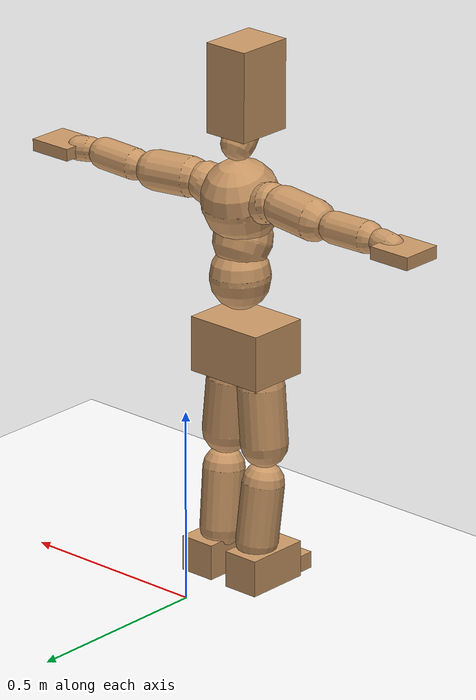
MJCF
<mujoco model="humanoid">
  <option integrator="implicitfast" />

  <visual>
    <global offwidth="1280" offheight="960" />
    <headlight active="1" ambient="0.34 0.34 0.34" diffuse="0.5 0.5 0.5" />
  </visual>

  <default>
    <joint damping="2" stiffness="2" armature="0.01" limited="true" solimplimit="0 .99 .01" />
    <geom condim="1" friction="0.7 0.005 0.0001" solimp=".99 .99 .003" solref="0.015 1" margin="0.001" rgba="0.8 0.6 .4 1" />
    <default class="smplcontact">
      <geom condim="3" friction="1. 0.005 0.0001" solref="0.015 1" solimp="0.98 0.98 0.001" priority="1" />
    </default>
    <default class="stiff_medium">
      <joint stiffness="10" />
    </default>
    <default class="stiff_medium_higher">
      <joint stiffness="50" />
    </default>
    <default class="stiff_high">
      <joint stiffness="100" />
    </default>
  </default>

  <asset>
    <texture type="skybox" builtin="gradient" rgb1="0.99 0.99 0.99" rgb2="0.608 0.828 0.892" width="100" />
    <texture builtin="flat" height="1278" mark="cross" markrgb="1 1 1" name="texgeom" random="0.01" rgb1="0.8 0.6 0.4" rgb2="0.8 0.6 0.4" type="cube" width="127" />
    <texture name="texplane" type="2d" builtin="checker" markrgb="1 1 1" rgb1="0.756 0.772 0.76" rgb2="0.6 0.6 0.6" width="100" height="100" />
    <material name="MatPlane" reflectance="0.5" texture="texplane" texrepeat="1 1" texuniform="true" />
    <material name="geom" texture="texgeom" texuniform="true" />
  </asset>

  <worldbody>
    <light name="tracking_light" pos="0 0 7" dir="0 0 -1" directional="true" cutoff="100" exponent="1" diffuse="1 1 1" specular="0.1 0.1 0.1" mode="trackcom" />
    <camera name="back" pos="0 3 2.4" xyaxes="-1 0 0 0 -1 2" mode="trackcom" />
    <camera name="side" pos="-3 0 2.4" xyaxes="0 -1 0 1 0 2" mode="trackcom" />
    <camera name="front_side" pos="-2.8 -2.8 0.8" xyaxes="0.5 -0.5 0 0.1 0.1 1" mode="trackcom" />
    <geom condim="3" name="floor" pos="0 0 0" rgba="1 1 1 1" size="100 100 .2" type="plane" material="MatPlane" />
    <body name="Pelvis" pos="-0.0018 -0.2233 0.625585" euler="90 0 0">
      <site name="Pelvis" size="0.01" />
      <freejoint name="Pelvis" />
      <geom type="box" pos="-0.0000 -0.0121 -0.0055" size="0.1069 0.0722 0.083" quat="1.0000 0.0000 0.0000 0.0000" density="3165.830099" name="Pelvis" />
      <body name="L_Hip" pos="0.045175 -0.05941 -0.00442">
        <joint name="L_Hip_x" type="hinge" pos="0 0 0" axis="1 0 0" stiffness="4.978594693877551" range="-160.0 22.92" class="stiff_medium" damping="6.22568299746539" armature="0.0034600686577585483"/>
        <joint name="L_Hip_y" type="hinge" pos="0 0 0" axis="0 1 0" stiffness="5.023897551020409" range="-70.0 70.0" class="stiff_medium" damping="5.491750724941625" armature="0.006003172978471898"/>
        <joint name="L_Hip_z" type="hinge" pos="0 0 0" axis="0 0 1" stiffness="5.020019081632654" range="-28.65 90.0" class="stiff_medium" damping="4.16524883266358" armature="0.0034560222891349703"/>
        <geom type="capsule" density="2040.816327" fromto="0.004485 -0.04875 -0.000585 0.01781 -0.19513 -0.00234" size="0.0615" name="L_Hip" />
        <body name="L_Knee" pos="0.022295 -0.24388 -0.002925">
          <joint name="L_Knee_x" type="hinge" pos="0 0 0" axis="1 0 0" range="-5.16 171.89" damping="3.558633532979093" armature="0.0037773959685041747" stiffness="1.0476688775510206"/>
          <joint name="L_Knee_y" type="hinge" pos="0 0 0" axis="0 1 0" range="-4.58 6.88" damping="4.609132499413812" armature="0.006525956703656113" stiffness="1.017288698129252"/>
          <joint name="L_Knee_z" type="hinge" pos="0 0 0" axis="0 0 1" range="-6.88 4.58" damping="3.571423228548828" armature="0.003755847998989064" stiffness="1.0612669795918368"/>
          <geom type="capsule" density="1234.567901" fromto="-0.001755 -0.05174 -0.005655 -0.007085 -0.20696 -0.02275" size="0.0541" name="L_Knee" />
          <body name="L_Ankle" pos="-0.00884 -0.2587 -0.028405">
            <joint name="L_Ankle_x" type="hinge" pos="0 0 0" axis="1 0 0" range="-45.84 45.84" class="stiff_medium" damping="3.809433260129821" armature="0.006201616138198001" stiffness="6.499999999999999"/>
            <joint name="L_Ankle_y" type="hinge" pos="0 0 0" axis="0 1 0" range="-74.48 22.92" class="stiff_medium" damping="1.9262945683357147" armature="0.006342924382905433" stiffness="6.499999999999999"/>
            <joint name="L_Ankle_z" type="hinge" pos="0 0 0" axis="0 0 1" range="-4.58 4.58" class="stiff_medium" damping="4.1239724237767295" armature="0.0072680122017397064" stiffness="6.499999999999999"/>
            <geom type="box" pos="0.015145 -0.015535 0.01573" size="0.0483 0.0464 0.085" quat="1.0000 0.0000 0.0000 0.0000" density="449.071558" name="L_Ankle" class="smplcontact" />
            <body name="L_Toe" pos="0.01716 -0.03627 0.077545">
              <joint name="L_Toe_x" type="hinge" pos="0 0 0" axis="1 0 0" range="-91.67 22.92" armature="0.007804414811504425" damping="1.4244816078107678" stiffness="1.2999999999999998"/>
              <joint name="L_Toe_y" type="hinge" pos="0 0 0" axis="0 1 0" range="-4.58 4.58" armature="0.008453032983853657" damping="1.482494039044323" stiffness="1.2999999999999998"/>
              <joint name="L_Toe_z" type="hinge" pos="0 0 0" axis="0 0 1" range="-4.58 4.58" armature="0.009764504016630505" damping="1.5933521407158968" stiffness="1.2999999999999998"/>
              <geom type="box" pos="-0.00195 0.003575 0.01612" size="0.0478 0.02 0.0496" quat="1.0000 0.0000 0.0000 0.0000" density="423.206892" name="L_Toe" class="smplcontact" />
            </body>
          </body>
        </body>
      </body>
      <body name="R_Hip" pos="-0.044005 -0.058825 -0.002795">
        <joint name="R_Hip_x" type="hinge" pos="0 0 0" axis="1 0 0" stiffness="4.978594693877551" range="-160.0 22.92" class="stiff_medium" damping="6.22568299746539" armature="0.0034600686577585483"/>
        <joint name="R_Hip_y" type="hinge" pos="0 0 0" axis="0 1 0" stiffness="5.023897551020409" range="-70.0 70.0" class="stiff_medium" damping="5.491750724941625" armature="0.006003172978471898"/>
        <joint name="R_Hip_z" type="hinge" pos="0 0 0" axis="0 0 1" stiffness="5.020019081632654" range="-90.0 28.65" class="stiff_medium" damping="4.16524883266358" armature="0.0034560222891349703"/>
        <geom type="capsule" density="2040.816327" fromto="-0.005005 -0.049725 -0.00117 -0.01989 -0.198965 -0.004615" size="0.0606" name="R_Hip" />
        <body name="R_Knee" pos="-0.024895 -0.24869 -0.005785">
          <joint name="R_Knee_x" type="hinge" pos="0 0 0" axis="1 0 0" range="-5.16 171.89" damping="3.558633532979093" armature="0.0037773959685041747" stiffness="1.0476688775510206"/>
          <joint name="R_Knee_y" type="hinge" pos="0 0 0" axis="0 1 0" range="-6.88 4.58" damping="4.609132499413812" armature="0.006525956703656113" stiffness="1.017288698129252"/>
          <joint name="R_Knee_z" type="hinge" pos="0 0 0" axis="0 0 1" range="-4.58 6.88" damping="3.571423228548828" armature="0.003755847998989064" stiffness="1.0612669795918368"/>
          <geom type="capsule" density="1234.567901" fromto="0.00208 -0.051805 -0.005525 0.00819 -0.207155 -0.02197" size="0.0541" name="R_Knee" />
          <body name="R_Ankle" pos="0.01027 -0.25896 -0.027495">
            <joint name="R_Ankle_x" type="hinge" pos="0 0 0" axis="1 0 0" range="-45.84 45.84" class="stiff_medium" damping="3.809433260129821" armature="0.006201616138198001" stiffness="6.499999999999999"/>
            <joint name="R_Ankle_y" type="hinge" pos="0 0 0" axis="0 1 0" range="-22.92 74.48" class="stiff_medium" damping="1.9262945683357147" armature="0.006342924382905433" stiffness="6.499999999999999"/>
            <joint name="R_Ankle_z" type="hinge" pos="0 0 0" axis="0 0 1" range="-4.58 4.58" class="stiff_medium" damping="4.1239724237767295" armature="0.0072680122017397064" stiffness="6.499999999999999"/>
            <geom type="box" pos="-0.01378 -0.01131 0.01664" size="0.0483 0.0478 0.0865" quat="1.0000 0.0000 0.0000 0.0000" density="434.700981" name="R_Ankle" class="smplcontact" />
            <body name="R_Toe" pos="-0.01651 -0.031265 0.080145">
              <joint name="R_Toe_x" type="hinge" pos="0 0 0" axis="1 0 0" range="-91.67 22.92" armature="0.007804414811504425" damping="1.4244816078107678" stiffness="1.2999999999999998"/>
              <joint name="R_Toe_y" type="hinge" pos="0 0 0" axis="0 1 0" range="-4.58 4.58" armature="0.008453032983853657" damping="1.482494039044323" stiffness="1.2999999999999998"/>
              <joint name="R_Toe_z" type="hinge" pos="0 0 0" axis="0 0 1" range="-4.58 4.58" armature="0.009764504016630505" damping="1.5933521407158968" stiffness="1.2999999999999998"/>
              <geom type="box" pos="0.00273 0.002925 0.014755" size="0.0479 0.0216 0.0493" quat="1.0000 0.0000 0.0000 0.0000" density="407.384095" name="R_Toe" class="smplcontact" />
            </body>
          </body>
        </body>
      </body>
      <body name="Torso" pos="-0.0025 0.109 -0.0267">
        <joint name="Torso_x" type="hinge" pos="0 0 0" axis="1 0 0" range="-25.78 57.3" class="stiff_medium" damping="13.37314814999913" armature="0.00877242981734661" stiffness="9.060765510204082"/>
        <joint name="Torso_y" type="hinge" pos="0 0 0" axis="0 1 0" range="-57.3 57.3" class="stiff_high" damping="12.226320346141847" armature="0.004068879652070055" stiffness="91.84525102040817"/>
        <joint name="Torso_z" type="hinge" pos="0 0 0" axis="0 0 1" range="-34.38 34.38" class="stiff_high" damping="16.35359938253326" armature="0.007159206954260778" stiffness="93.39030652173913"/>
        <geom type="capsule" density="2040.816327" fromto="0.0025 0.0608 0.0005 0.003 0.0743 0.0006" size="0.0769" name="Torso" />
        <body name="Spine" pos="0.0055 0.1352 0.0011">
          <joint name="Spine_x" type="hinge" pos="0 0 0" axis="1 0 0" stiffness="8.908842708333333" range="-25.78 57.3" class="stiff_medium" damping="13.158594891569368" armature="0.00863804026274914"/>
          <joint name="Spine_y" type="hinge" pos="0 0 0" axis="0 1 0" stiffness="8.972749166666667" range="-57.3 57.3" class="stiff_high" damping="4.80890026560341" armature="0.004027040886342621"/>
          <joint name="Spine_z" type="hinge" pos="0 0 0" axis="0 0 1" stiffness="17.517849130434783" range="-34.38 34.38" class="stiff_high" damping="8.751064227192273" armature="0.006071674266045487"/>
          <geom type="capsule" density="2040.816327" fromto="0.0007 0.0238 0.0114 0.0008 0.0291 0.014" size="0.0755" name="Spine" />
          <body name="Chest" pos="0.0015 0.0529 0.0254">
            <joint name="Chest_x" type="hinge" pos="0 0 0" axis="1 0 0" stiffness="8.515273695652173" range="-25.78 57.3" class="stiff_medium" damping="12.817953773118768" armature="0.008575437230772738"/>
            <joint name="Chest_y" type="hinge" pos="0 0 0" axis="0 1 0" stiffness="7.491567027027026" range="-57.3 57.3" class="stiff_high" damping="4.383244158841448" armature="0.0040071784395007744"/>
            <joint name="Chest_z" type="hinge" pos="0 0 0" axis="0 0 1" stiffness="17.575529777777778" range="-34.38 34.38" class="stiff_high" damping="8.418335716998895" armature="0.0056003034664410525"/>
            <geom type="capsule" density="2040.816327" fromto="-0.0009 0.0682 -0.0173 -0.001 0.0833 -0.0212" size="0.1002" name="Chest" />
            <body name="Neck" pos="-0.0028 0.2139 -0.0429">
              <joint name="Neck_x" type="hinge" pos="0 0 0" axis="1 0 0" range="-28.65 57.3" class="stiff_medium_higher" damping="10.000000000000014" armature="0.01000000000000003" stiffness="50.0"/>
              <joint name="Neck_y" type="hinge" pos="0 0 0" axis="0 1 0" range="-40.11 40.11" class="stiff_medium_higher" damping="10.0" armature="0.01" stiffness="50.0"/>
              <joint name="Neck_z" type="hinge" pos="0 0 0" axis="0 0 1" range="-40.11 40.11" class="stiff_medium_higher" damping="10.000000000000014" armature="0.010000000000000026" stiffness="50.0"/>
              <geom type="capsule" density="1000" fromto="0.001 0.013 0.0103 0.0041 0.052 0.0411" size="0.0436" name="Neck" />
              <body name="Head" pos="0.0052 0.065 0.0513">
                <joint name="Head_x" type="hinge" pos="0 0 0" axis="1 0 0" range="-28.65 57.3" class="stiff_medium_higher" damping="2.000000000000003" armature="0.010000000000000031" stiffness="50.0"/>
                <joint name="Head_y" type="hinge" pos="0 0 0" axis="0 1 0" range="-40.11 40.11" class="stiff_medium_higher" damping="2.0" armature="0.01" stiffness="50.0"/>
                <joint name="Head_z" type="hinge" pos="0 0 0" axis="0 0 1" range="-40.11 40.11" class="stiff_medium_higher" damping="2.0000000000000036" armature="0.010000000000000038" stiffness="50.0"/>
                <geom type="box" pos="-0.0042 0.0876 -0.0116" size="0.0606 0.1154 0.076" quat="1.0000 0.0000 0.0000 0.0000" density="1018.069894" name="Head" />
                <geom type="capsule" name="nose" size="0.02 0.01" pos="0 0.07 0.05" quat="1 0 0 0" mass="0" contype="0" conaffinity="0" />
              </body>
            </body>
            <body name="L_Thorax" pos="0.053584 0.082756 -0.023188">
              <joint name="L_Thorax_x" type="hinge" pos="0 0 0" axis="1 0 0" range="-10.89 4.58" class="stiff_medium_higher" damping="11.144256526121987" armature="0.005672388327247997" stiffness="27.368201530612247"/>
              <joint name="L_Thorax_y" type="hinge" pos="0 0 0" axis="0 1 0" range="-28.65 17.19" class="stiff_medium_higher" damping="9.115196575332536" armature="0.0038336850653574294" stiffness="27.0910387755102"/>
              <joint name="L_Thorax_z" type="hinge" pos="0 0 0" axis="0 0 1" range="-31.51 40.11" class="stiff_medium_higher" damping="9.113706518813446" armature="0.003831998274647257" stiffness="27.094103571428573"/>
              <geom type="capsule" density="1000" fromto="0.012376 0.004148 -0.001224 0.049504 0.016592 -0.004828" size="0.0521" name="L_Thorax" />
              <body name="L_Shoulder" pos="0.06188 0.02074 -0.006052">
                <joint name="L_Shoulder_x" type="hinge" pos="0 0 0" axis="1 0 0" range="-97.4 97.4" class="stiff_medium" damping="3.5490905639859007" armature="0.006345004028927573" stiffness="5.514418979591838"/>
                <joint name="L_Shoulder_y" type="hinge" pos="0 0 0" axis="0 1 0" range="-108.86 80.21" class="stiff_medium" damping="2.7567199214026434" armature="0.0038813055548228286" stiffness="5.438823367346939"/>
                <joint name="L_Shoulder_z" type="hinge" pos="0 0 0" axis="0 0 1" range="-97.4 85.94" class="stiff_medium" damping="2.7570102865462522" armature="0.003878943473659993" stiffness="5.443281836734695"/>
                <geom type="capsule" density="1000" fromto="0.035292 -0.001768 -0.00374 0.141236 -0.006936 -0.01496" size="0.0517" name="L_Shoulder" />
                <body name="L_Elbow" pos="0.176528 -0.008704 -0.0187">
                  <joint name="L_Elbow_x" type="hinge" pos="0 0 0" axis="1 0 0" range="-17.19 4.58" damping="3.265466516474599" armature="0.007519972541546954" stiffness="1.1343947346938776"/>
                  <joint name="L_Elbow_y" type="hinge" pos="0 0 0" axis="0 1 0" range="-180.0 17.19" damping="2.4156484254688855" armature="0.0041178361993632045" stiffness="1.1336744897959183"/>
                  <joint name="L_Elbow_z" type="hinge" pos="0 0 0" axis="0 0 1" range="-100.84 4.58" damping="2.4133114024327864" armature="0.0041054352469098625" stiffness="1.1348997755102042"/>
                  <geom type="capsule" density="1000" fromto="0.033864 0.001224 -0.000136 0.135592 0.004896 -0.000612" size="0.0405" name="L_Elbow" />
                  <body name="L_Wrist" pos="0.169456 0.00612 -0.000816">
                    <joint name="L_Wrist_x" type="hinge" pos="0 0 0" axis="1 0 0" range="-180.0 22.92" armature="0.008090873181896215" damping="1.4398674440733095" stiffness="1.2812079795918367"/>
                    <joint name="L_Wrist_y" type="hinge" pos="0 0 0" axis="0 1 0" range="-17.19 17.19" armature="0.0050899222663110325" damping="1.1368723710519675" stiffness="1.269644918367347"/>
                    <joint name="L_Wrist_z" type="hinge" pos="0 0 0" axis="0 0 1" range="-22.92 22.92" armature="0.004916742721869851" damping="1.1194149453885718" stiffness="1.274308918367347"/>
                    <geom type="capsule" density="1000" fromto="0.011424 -0.001088 -0.00204 0.045696 -0.00442 -0.00816" size="0.0318" name="L_Wrist" class="smplcontact" />
                    <body name="L_Hand" pos="0.05712 -0.005576 -0.010132">
                      <joint name="L_Hand_x" type="hinge" pos="0 0 0" axis="1 0 0" range="-17.19 17.19" armature="0.009765788321041262" damping="1.629814229697122" stiffness="1.36"/>
                      <joint name="L_Hand_y" type="hinge" pos="0 0 0" axis="0 1 0" range="-51.57 51.57" armature="0.007167532872723528" damping="1.396269652101914" stiffness="1.36"/>
                      <joint name="L_Hand_z" type="hinge" pos="0 0 0" axis="0 0 1" range="-91.67 91.67" armature="0.006474932382798964" damping="1.3270951767380206" stiffness="1.36"/>
                      <geom type="box" pos="0.033524 0.00068 -0.003944" size="0.0585 0.0158 0.0538" quat="1.0000 0.0000 0.0000 0.0000" density="400.552564" name="L_Hand" class="smplcontact" />
                    </body>
                  </body>
                </body>
              </body>
            </body>
            <body name="R_Thorax" pos="-0.055624 0.080784 -0.026248">
              <joint name="R_Thorax_x" type="hinge" pos="0 0 0" axis="1 0 0" range="-10.89 4.58" class="stiff_medium_higher" damping="11.144256526121987" armature="0.005672388327247997" stiffness="27.368201530612247"/>
              <joint name="R_Thorax_y" type="hinge" pos="0 0 0" axis="0 1 0" range="-17.19 28.65" class="stiff_medium_higher" damping="9.115196575332536" armature="0.0038336850653574294" stiffness="27.0910387755102"/>
              <joint name="R_Thorax_z" type="hinge" pos="0 0 0" axis="0 0 1" range="-40.11 31.51" class="stiff_medium_higher" damping="9.113706518813446" armature="0.003831998274647257" stiffness="27.094103571428573"/>
              <geom type="capsule" density="1000" fromto="-0.013056 0.00442 -0.001224 -0.052224 0.01768 -0.004964" size="0.0511" name="R_Thorax" />
              <body name="R_Shoulder" pos="-0.06528 0.022168 -0.006188">
                <joint name="R_Shoulder_x" type="hinge" pos="0 0 0" axis="1 0 0" range="-97.4 97.4" class="stiff_medium" damping="3.5490905639859007" armature="0.006345004028927573" stiffness="5.514418979591838"/>
                <joint name="R_Shoulder_y" type="hinge" pos="0 0 0" axis="0 1 0" range="-80.21 108.86" class="stiff_medium" damping="2.7567199214026434" armature="0.0038813055548228286" stiffness="5.438823367346939"/>
                <joint name="R_Shoulder_z" type="hinge" pos="0 0 0" axis="0 0 1" range="-85.94 97.4" class="stiff_medium" damping="2.7570102865462522" armature="0.003878943473659993" stiffness="5.443281836734695"/>
                <geom type="capsule" density="1000" fromto="-0.034476 -0.001836 -0.002924 -0.13804 -0.007276 -0.011628" size="0.0531" name="R_Shoulder" />
                <body name="R_Elbow" pos="-0.172516 -0.009044 -0.014552">
                  <joint name="R_Elbow_x" type="hinge" pos="0 0 0" axis="1 0 0" range="-17.19 4.58" damping="3.265466516474599" armature="0.007519972541546954" stiffness="1.1343947346938776"/>
                  <joint name="R_Elbow_y" type="hinge" pos="0 0 0" axis="0 1 0" range="-17.19 180.0" damping="2.4156484254688855" armature="0.0041178361993632045" stiffness="1.1336744897959183"/>
                  <joint name="R_Elbow_z" type="hinge" pos="0 0 0" axis="0 0 1" range="-4.58 100.84" damping="2.4133114024327864" armature="0.0041054352469098625" stiffness="1.1348997755102042"/>
                  <geom type="capsule" density="1000" fromto="-0.034748 0.001088 -0.000748 -0.138856 0.004216 -0.002992" size="0.0408" name="R_Elbow" />
                  <body name="R_Wrist" pos="-0.173604 0.005304 -0.003808">
                    <joint name="R_Wrist_x" type="hinge" pos="0 0 0" axis="1 0 0" range="-180.0 22.92" armature="0.008090873181896215" damping="1.4398674440733095" stiffness="1.2812079795918367"/>
                    <joint name="R_Wrist_y" type="hinge" pos="0 0 0" axis="0 1 0" range="-17.19 17.19" armature="0.0050899222663110325" damping="1.1368723710519675" stiffness="1.269644918367347"/>
                    <joint name="R_Wrist_z" type="hinge" pos="0 0 0" axis="0 0 1" range="-22.92 22.92" armature="0.004916742721869851" damping="1.1194149453885718" stiffness="1.274308918367347"/>
                    <geom type="capsule" density="1000" fromto="-0.011492 -0.000816 -0.001428 -0.046036 -0.003332 -0.005644" size="0.0326" name="R_Wrist" class="smplcontact" />
                    <body name="R_Hand" pos="-0.057528 -0.004148 -0.007004">
                      <joint name="R_Hand_x" type="hinge" pos="0 0 0" axis="1 0 0" range="-17.19 17.19" armature="0.009765788321041262" damping="1.629814229697122" stiffness="1.36"/>
                      <joint name="R_Hand_y" type="hinge" pos="0 0 0" axis="0 1 0" range="-51.57 51.57" armature="0.007167532872723528" damping="1.396269652101914" stiffness="1.36"/>
                      <joint name="R_Hand_z" type="hinge" pos="0 0 0" axis="0 0 1" range="-91.67 91.67" armature="0.006474932382798964" damping="1.3270951767380206" stiffness="1.36"/>
                      <geom type="box" pos="-0.031416 -0.000612 -0.005372" size="0.0569 0.0164 0.0546" quat="1.0000 0.0000 0.0000 0.0000" density="403.679611" name="R_Hand" class="smplcontact" />
                    </body>
                  </body>
                </body>
              </body>
            </body>
          </body>
        </body>
      </body>
    </body>
  </worldbody>
  <actuator>
    <general name="L_Hip_x" joint="L_Hip_x" biastype="affine" gainprm="143.04999325064261" biasprm="-107.20147099714679 -89.61470448979591 -0.8300910663287187" ctrllimited="true" ctrlrange="-1 1" forcerange="-179.22940897959182 179.22940897959182" />
    <general name="L_Hip_y" joint="L_Hip_y" biastype="affine" gainprm="110.48127747071428" biasprm="0.0 -90.43015591836736 -1.0983501449883248" ctrllimited="true" ctrlrange="-1 1" forcerange="-180.86031183673472 180.86031183673472" />
    <general name="L_Hip_z" joint="L_Hip_z" biastype="affine" gainprm="93.56059768935407" biasprm="48.37709792028547 -90.36034346938777 -0.833049766532716" ctrllimited="true" ctrlrange="-1 1" forcerange="-180.72068693877554 180.72068693877554" />
    <general name="L_Knee_x" joint="L_Knee_x" biastype="affine" gainprm="145.68332843368495" biasprm="137.19164840298384 -94.29019897959185 -0.8896583832447732" ctrllimited="true" ctrlrange="-1 1" forcerange="-188.5803979591837 188.5803979591837" />
    <general name="L_Knee_y" joint="L_Knee_y" biastype="affine" gainprm="9.156272697284273" biasprm="1.8376463528581 -91.55598283163268 -1.152283124853453" ctrllimited="true" ctrlrange="-1 1" forcerange="-183.11196566326535 183.11196566326535" />
    <general name="L_Knee_z" joint="L_Knee_z" biastype="affine" gainprm="9.552106385960705" biasprm="-1.9170894142853074 -95.51402816326531 -0.892855807137207" ctrllimited="true" ctrlrange="-1 1" forcerange="-191.02805632653062 191.02805632653062" />
    <general name="L_Ankle_x" joint="L_Ankle_x" biastype="affine" gainprm="46.80344735318074" biasprm="0.0 -58.49999999999999 -1.2698110867099404" ctrllimited="true" ctrlrange="-1 1" forcerange="-116.99999999999999 116.99999999999999" />
    <general name="L_Ankle_y" joint="L_Ankle_y" biastype="affine" gainprm="49.723557724692455" biasprm="-26.321834048102083 -58.49999999999999 -1.2841963788904764" ctrllimited="true" ctrlrange="-1 1" forcerange="-116.99999999999999 116.99999999999999" />
    <general name="L_Ankle_z" joint="L_Ankle_z" biastype="affine" gainprm="4.676260664868406" biasprm="0.0 -58.49999999999999 -1.374657474592243" ctrllimited="true" ctrlrange="-1 1" forcerange="-116.99999999999999 116.99999999999999" />
    <general name="L_Toe_x" joint="L_Toe_x" biastype="affine" gainprm="46.799363282731065" biasprm="-28.07798434145877 -46.8 -0.5697926431243071" ctrllimited="true" ctrlrange="-1 1" forcerange="-93.6 93.6" />
    <general name="L_Toe_y" joint="L_Toe_y" biastype="affine" gainprm="3.741008531894725" biasprm="0.0 -46.8 -0.5929976156177292" ctrllimited="true" ctrlrange="-1 1" forcerange="-93.6 93.6" />
    <general name="L_Toe_z" joint="L_Toe_z" biastype="affine" gainprm="3.741008531894725" biasprm="0.0 -46.8 -0.6373408562863587" ctrllimited="true" ctrlrange="-1 1" forcerange="-93.6 93.6" />
    <general name="R_Hip_x" joint="R_Hip_x" biastype="affine" gainprm="143.04999325064261" biasprm="-107.20147099714679 -89.61470448979591 -0.8300910663287187" ctrllimited="true" ctrlrange="-1 1" forcerange="-179.22940897959182 179.22940897959182" />
    <general name="R_Hip_y" joint="R_Hip_y" biastype="affine" gainprm="110.48127747071428" biasprm="0.0 -90.43015591836736 -1.0983501449883248" ctrllimited="true" ctrlrange="-1 1" forcerange="-180.86031183673472 180.86031183673472" />
    <general name="R_Hip_z" joint="R_Hip_z" biastype="affine" gainprm="93.56059768935407" biasprm="-48.37709792028547 -90.36034346938777 -0.833049766532716" ctrllimited="true" ctrlrange="-1 1" forcerange="-180.72068693877554 180.72068693877554" />
    <general name="R_Knee_x" joint="R_Knee_x" biastype="affine" gainprm="145.68332843368495" biasprm="137.19164840298384 -94.29019897959185 -0.8896583832447732" ctrllimited="true" ctrlrange="-1 1" forcerange="-188.5803979591837 188.5803979591837" />
    <general name="R_Knee_y" joint="R_Knee_y" biastype="affine" gainprm="9.156272697284273" biasprm="-1.8376463528581 -91.55598283163268 -1.152283124853453" ctrllimited="true" ctrlrange="-1 1" forcerange="-183.11196566326535 183.11196566326535" />
    <general name="R_Knee_z" joint="R_Knee_z" biastype="affine" gainprm="9.552106385960705" biasprm="1.9170894142853074 -95.51402816326531 -0.892855807137207" ctrllimited="true" ctrlrange="-1 1" forcerange="-191.02805632653062 191.02805632653062" />
    <general name="R_Ankle_x" joint="R_Ankle_x" biastype="affine" gainprm="46.80344735318074" biasprm="0.0 -58.49999999999999 -1.2698110867099404" ctrllimited="true" ctrlrange="-1 1" forcerange="-116.99999999999999 116.99999999999999" />
    <general name="R_Ankle_y" joint="R_Ankle_y" biastype="affine" gainprm="49.723557724692455" biasprm="26.321834048102083 -58.49999999999999 -1.2841963788904764" ctrllimited="true" ctrlrange="-1 1" forcerange="-116.99999999999999 116.99999999999999" />
    <general name="R_Ankle_z" joint="R_Ankle_z" biastype="affine" gainprm="4.676260664868406" biasprm="0.0 -58.49999999999999 -1.374657474592243" ctrllimited="true" ctrlrange="-1 1" forcerange="-116.99999999999999 116.99999999999999" />
    <general name="R_Toe_x" joint="R_Toe_x" biastype="affine" gainprm="46.799363282731065" biasprm="-28.07798434145877 -46.8 -0.5697926431243071" ctrllimited="true" ctrlrange="-1 1" forcerange="-93.6 93.6" />
    <general name="R_Toe_y" joint="R_Toe_y" biastype="affine" gainprm="3.741008531894725" biasprm="0.0 -46.8 -0.5929976156177292" ctrllimited="true" ctrlrange="-1 1" forcerange="-93.6 93.6" />
    <general name="R_Toe_z" joint="R_Toe_z" biastype="affine" gainprm="3.741008531894725" biasprm="0.0 -46.8 -0.6373408562863587" ctrllimited="true" ctrlrange="-1 1" forcerange="-93.6 93.6" />
    <general name="Torso_x" joint="Torso_x" biastype="affine" gainprm="157.65944472385632" biasprm="59.81494580760652 -217.45837224489796 -3.566172839999768" ctrllimited="true" ctrlrange="-1 1" forcerange="-326.1875583673469 326.1875583673469" />
    <general name="Torso_y" joint="Torso_y" biastype="affine" gainprm="220.4448395268381" biasprm="0.0 -220.4286024489796 -2.4452640692283696" ctrllimited="true" ctrlrange="-1 1" forcerange="-330.6429036734694 330.6429036734694" />
    <general name="Torso_z" joint="Torso_z" biastype="affine" gainprm="134.4919475257732" biasprm="0.0 -224.1367356521739 -3.270719876506652" ctrllimited="true" ctrlrange="-1 1" forcerange="-336.20510347826087 336.20510347826087" />
    <general name="Spine_x" joint="Spine_x" biastype="affine" gainprm="155.0159523437853" biasprm="58.81202236249533 -213.812225 -3.5089586377518316" ctrllimited="true" ctrlrange="-1 1" forcerange="-320.7183375 320.7183375" />
    <general name="Spine_y" joint="Spine_y" biastype="affine" gainprm="215.36184268481006" biasprm="0.0 -215.34597999999997 -2.404450132801705" ctrllimited="true" ctrlrange="-1 1" forcerange="-323.01896999999997 323.01896999999997" />
    <general name="Spine_z" joint="Spine_z" biastype="affine" gainprm="126.13780454111807" biasprm="0.0 -210.2141895652174 -2.917021409064091" ctrllimited="true" ctrlrange="-1 1" forcerange="-315.3212843478261 315.3212843478261" />
    <general name="Chest_x" joint="Chest_x" biastype="affine" gainprm="148.1677592269953" biasprm="56.21386339473869 -204.36656869565215 -3.4181210061650047" ctrllimited="true" ctrlrange="-1 1" forcerange="-306.5498530434782 306.5498530434782" />
    <general name="Chest_y" joint="Chest_y" biastype="affine" gainprm="179.81085279091494" biasprm="0.0 -179.79760864864863 -2.191622079420724" ctrllimited="true" ctrlrange="-1 1" forcerange="-269.69641297297295 269.69641297297295" />
    <general name="Chest_z" joint="Chest_z" biastype="affine" gainprm="126.55313579361271" biasprm="0.0 -210.90635733333332 -2.8061119056662984" ctrllimited="true" ctrlrange="-1 1" forcerange="-316.359536 316.359536" />
    <general name="Neck_x" joint="Neck_x" biastype="affine" gainprm="27.00198885760427" biasprm="9.000662952534757 -36.0 -0.8000000000000012" ctrllimited="true" ctrlrange="-1 1" forcerange="-72.0 72.0" />
    <general name="Neck_y" joint="Neck_y" biastype="affine" gainprm="25.20185626709732" biasprm="0.0 -36.0 -0.8" ctrllimited="true" ctrlrange="-1 1" forcerange="-72.0 72.0" />
    <general name="Neck_z" joint="Neck_z" biastype="affine" gainprm="25.20185626709732" biasprm="0.0 -36.0 -0.8000000000000012" ctrllimited="true" ctrlrange="-1 1" forcerange="-72.0 72.0" />
    <general name="Head_x" joint="Head_x" biastype="affine" gainprm="18.001325905069514" biasprm="6.000441968356505 -24.0 -0.8000000000000013" ctrllimited="true" ctrlrange="-1 1" forcerange="-48.0 48.0" />
    <general name="Head_y" joint="Head_y" biastype="affine" gainprm="16.801237511398213" biasprm="0.0 -24.0 -0.8" ctrllimited="true" ctrlrange="-1 1" forcerange="-48.0 48.0" />
    <general name="Head_z" joint="Head_z" biastype="affine" gainprm="16.801237511398213" biasprm="0.0 -24.0 -0.8000000000000015" ctrllimited="true" ctrlrange="-1 1" forcerange="-48.0 48.0" />
    <general name="L_Thorax_x" joint="L_Thorax_x" biastype="affine" gainprm="8.867377275114649" biasprm="-3.6168810992872307 -65.68368367346939 -0.891540522089759" ctrllimited="true" ctrlrange="-1 1" forcerange="-131.36736734693878 131.36736734693878" />
    <general name="L_Thorax_y" joint="L_Thorax_y" biastype="affine" gainprm="26.00931296559117" biasprm="-6.502328241397793 -65.01849306122449 -0.7292157260266029" ctrllimited="true" ctrlrange="-1 1" forcerange="-130.03698612244898 130.03698612244898" />
    <general name="L_Thorax_z" joint="L_Thorax_z" biastype="affine" gainprm="40.64131175335829" biasprm="4.880135172841123 -65.02584857142858 -0.7290965215050758" ctrllimited="true" ctrlrange="-1 1" forcerange="-130.05169714285717 130.05169714285717" />
    <general name="L_Shoulder_x" joint="L_Shoulder_x" biastype="affine" gainprm="44.99635371485119" biasprm="0.0 -26.46921110204082 -0.9464241503962403" ctrllimited="true" ctrlrange="-1 1" forcerange="-52.93842220408164 52.93842220408164" />
    <general name="L_Shoulder_y" joint="L_Shoulder_y" biastype="affine" gainprm="43.0740976513074" biasprm="-6.527068798381324 -26.106352163265306 -0.7351253123740382" ctrllimited="true" ctrlrange="-1 1" forcerange="-52.21270432653061 52.21270432653061" />
    <general name="L_Shoulder_z" joint="L_Shoulder_z" biastype="affine" gainprm="41.80292372365357" biasprm="-2.6129677422988493 -26.127752816326534 -0.7352027430790007" ctrllimited="true" ctrlrange="-1 1" forcerange="-52.25550563265307 52.25550563265307" />
    <general name="L_Elbow_x" joint="L_Elbow_x" biastype="affine" gainprm="7.758406020737442" biasprm="-4.493959573794174 -40.838210448979595 -0.5224746426359358" ctrllimited="true" ctrlrange="-1 1" forcerange="-81.67642089795919 81.67642089795919" />
    <general name="L_Elbow_y" joint="L_Elbow_y" biastype="affine" gainprm="70.23007526501416" biasprm="-57.98548888836633 -40.81228163265306 -0.3865037480750217" ctrllimited="true" ctrlrange="-1 1" forcerange="-81.62456326530612 81.62456326530612" />
    <general name="L_Elbow_z" joint="L_Elbow_z" biastype="affine" gainprm="37.586370869174154" biasprm="-34.3204710668441 -40.85639191836735 -0.38612982438924587" ctrllimited="true" ctrlrange="-1 1" forcerange="-81.7127838367347 81.7127838367347" />
    <general name="L_Wrist_x" joint="L_Wrist_x" biastype="affine" gainprm="13.612663555406227" biasprm="-10.537537903031787 -7.6872478775510205 -0.5759469776293238" ctrllimited="true" ctrlrange="-1 1" forcerange="-15.374495755102041 15.374495755102041" />
    <general name="L_Wrist_y" joint="L_Wrist_y" biastype="affine" gainprm="2.2855291959246" biasprm="0.0 -7.617869510204082 -0.454748948420787" ctrllimited="true" ctrlrange="-1 1" forcerange="-15.235739020408165 15.235739020408165" />
    <general name="L_Wrist_z" joint="L_Wrist_z" biastype="affine" gainprm="3.0585666857689655" biasprm="0.0 -7.645853510204082 -0.44776597815542873" ctrllimited="true" ctrlrange="-1 1" forcerange="-15.291707020408165 15.291707020408165" />
    <general name="L_Hand_x" joint="L_Hand_x" biastype="affine" gainprm="2.4481803230894545" biasprm="0.0 -8.16 -0.6519256918788489" ctrllimited="true" ctrlrange="-1 1" forcerange="-16.32 16.32" />
    <general name="L_Hand_y" joint="L_Hand_y" biastype="affine" gainprm="7.344540969268362" biasprm="0.0 -8.16 -0.5585078608407656" ctrllimited="true" ctrlrange="-1 1" forcerange="-16.32 16.32" />
    <general name="L_Hand_z" joint="L_Hand_z" biastype="affine" gainprm="13.055537534474128" biasprm="0.0 -8.16 -0.5308380706952083" ctrllimited="true" ctrlrange="-1 1" forcerange="-16.32 16.32" />
    <general name="R_Thorax_x" joint="R_Thorax_x" biastype="affine" gainprm="8.867377275114649" biasprm="-3.6168810992872307 -65.68368367346939 -0.891540522089759" ctrllimited="true" ctrlrange="-1 1" forcerange="-131.36736734693878 131.36736734693878" />
    <general name="R_Thorax_y" joint="R_Thorax_y" biastype="affine" gainprm="26.00931296559117" biasprm="6.502328241397789 -65.01849306122449 -0.7292157260266029" ctrllimited="true" ctrlrange="-1 1" forcerange="-130.03698612244898 130.03698612244898" />
    <general name="R_Thorax_z" joint="R_Thorax_z" biastype="affine" gainprm="40.64131175335829" biasprm="-4.880135172841123 -65.02584857142858 -0.7290965215050758" ctrllimited="true" ctrlrange="-1 1" forcerange="-130.05169714285717 130.05169714285717" />
    <general name="R_Shoulder_x" joint="R_Shoulder_x" biastype="affine" gainprm="44.99635371485119" biasprm="0.0 -26.46921110204082 -0.9464241503962403" ctrllimited="true" ctrlrange="-1 1" forcerange="-52.93842220408164 52.93842220408164" />
    <general name="R_Shoulder_y" joint="R_Shoulder_y" biastype="affine" gainprm="43.0740976513074" biasprm="6.527068798381324 -26.106352163265306 -0.7351253123740382" ctrllimited="true" ctrlrange="-1 1" forcerange="-52.21270432653061 52.21270432653061" />
    <general name="R_Shoulder_z" joint="R_Shoulder_z" biastype="affine" gainprm="41.80292372365357" biasprm="2.612967742298843 -26.127752816326534 -0.7352027430790007" ctrllimited="true" ctrlrange="-1 1" forcerange="-52.25550563265307 52.25550563265307" />
    <general name="R_Elbow_x" joint="R_Elbow_x" biastype="affine" gainprm="7.758406020737442" biasprm="-4.493959573794174 -40.838210448979595 -0.5224746426359358" ctrllimited="true" ctrlrange="-1 1" forcerange="-81.67642089795919 81.67642089795919" />
    <general name="R_Elbow_y" joint="R_Elbow_y" biastype="affine" gainprm="70.23007526501416" biasprm="57.98548888836633 -40.81228163265306 -0.3865037480750217" ctrllimited="true" ctrlrange="-1 1" forcerange="-81.62456326530612 81.62456326530612" />
    <general name="R_Elbow_z" joint="R_Elbow_z" biastype="affine" gainprm="37.586370869174154" biasprm="34.32047106684409 -40.85639191836735 -0.38612982438924587" ctrllimited="true" ctrlrange="-1 1" forcerange="-81.7127838367347 81.7127838367347" />
    <general name="R_Wrist_x" joint="R_Wrist_x" biastype="affine" gainprm="13.612663555406227" biasprm="-10.537537903031787 -7.6872478775510205 -0.5759469776293238" ctrllimited="true" ctrlrange="-1 1" forcerange="-15.374495755102041 15.374495755102041" />
    <general name="R_Wrist_y" joint="R_Wrist_y" biastype="affine" gainprm="2.2855291959246" biasprm="0.0 -7.617869510204082 -0.454748948420787" ctrllimited="true" ctrlrange="-1 1" forcerange="-15.235739020408165 15.235739020408165" />
    <general name="R_Wrist_z" joint="R_Wrist_z" biastype="affine" gainprm="3.0585666857689655" biasprm="0.0 -7.645853510204082 -0.44776597815542873" ctrllimited="true" ctrlrange="-1 1" forcerange="-15.291707020408165 15.291707020408165" />
    <general name="R_Hand_x" joint="R_Hand_x" biastype="affine" gainprm="2.4481803230894545" biasprm="0.0 -8.16 -0.6519256918788489" ctrllimited="true" ctrlrange="-1 1" forcerange="-16.32 16.32" />
    <general name="R_Hand_y" joint="R_Hand_y" biastype="affine" gainprm="7.344540969268362" biasprm="0.0 -8.16 -0.5585078608407656" ctrllimited="true" ctrlrange="-1 1" forcerange="-16.32 16.32" />
    <general name="R_Hand_z" joint="R_Hand_z" biastype="affine" gainprm="13.055537534474128" biasprm="0.0 -8.16 -0.5308380706952083" ctrllimited="true" ctrlrange="-1 1" forcerange="-16.32 16.32" />
  </actuator>
  <contact>
    <exclude body1="Torso" body2="Chest" />
    <exclude body1="Head" body2="Chest" />
    <exclude body1="R_Knee" body2="R_Toe" />
    <exclude body1="R_Knee" body2="L_Ankle" />
    <exclude body1="R_Knee" body2="L_Toe" />
    <exclude body1="L_Knee" body2="L_Toe" />
    <exclude body1="L_Knee" body2="R_Ankle" />
    <exclude body1="L_Knee" body2="R_Toe" />
    <exclude body1="L_Shoulder" body2="Chest" />
    <exclude body1="R_Shoulder" body2="Chest" />
  </contact>
  <sensor>
    <framelinvel name="sensor_Pelvis_framelinvel" objtype="xbody" objname="Pelvis" />
    <framelinvel name="sensor_L_Hip_framelinvel" objtype="xbody" objname="L_Hip" />
    <framelinvel name="sensor_L_Knee_framelinvel" objtype="xbody" objname="L_Knee" />
    <framelinvel name="sensor_L_Ankle_framelinvel" objtype="xbody" objname="L_Ankle" />
    <framelinvel name="sensor_L_Toe_framelinvel" objtype="xbody" objname="L_Toe" />
    <framelinvel name="sensor_R_Hip_framelinvel" objtype="xbody" objname="R_Hip" />
    <framelinvel name="sensor_R_Knee_framelinvel" objtype="xbody" objname="R_Knee" />
    <framelinvel name="sensor_R_Ankle_framelinvel" objtype="xbody" objname="R_Ankle" />
    <framelinvel name="sensor_R_Toe_framelinvel" objtype="xbody" objname="R_Toe" />
    <framelinvel name="sensor_Torso_framelinvel" objtype="xbody" objname="Torso" />
    <framelinvel name="sensor_Spine_framelinvel" objtype="xbody" objname="Spine" />
    <framelinvel name="sensor_Chest_framelinvel" objtype="xbody" objname="Chest" />
    <framelinvel name="sensor_Neck_framelinvel" objtype="xbody" objname="Neck" />
    <framelinvel name="sensor_Head_framelinvel" objtype="xbody" objname="Head" />
    <framelinvel name="sensor_L_Thorax_framelinvel" objtype="xbody" objname="L_Thorax" />
    <framelinvel name="sensor_L_Shoulder_framelinvel" objtype="xbody" objname="L_Shoulder" />
    <framelinvel name="sensor_L_Elbow_framelinvel" objtype="xbody" objname="L_Elbow" />
    <framelinvel name="sensor_L_Wrist_framelinvel" objtype="xbody" objname="L_Wrist" />
    <framelinvel name="sensor_L_Hand_framelinvel" objtype="xbody" objname="L_Hand" />
    <framelinvel name="sensor_R_Thorax_framelinvel" objtype="xbody" objname="R_Thorax" />
    <framelinvel name="sensor_R_Shoulder_framelinvel" objtype="xbody" objname="R_Shoulder" />
    <framelinvel name="sensor_R_Elbow_framelinvel" objtype="xbody" objname="R_Elbow" />
    <framelinvel name="sensor_R_Wrist_framelinvel" objtype="xbody" objname="R_Wrist" />
    <framelinvel name="sensor_R_Hand_framelinvel" objtype="xbody" objname="R_Hand" />
    <frameangvel name="sensor_Pelvis_frameangvel" objtype="xbody" objname="Pelvis" />
    <frameangvel name="sensor_L_Hip_frameangvel" objtype="xbody" objname="L_Hip" />
    <frameangvel name="sensor_L_Knee_frameangvel" objtype="xbody" objname="L_Knee" />
    <frameangvel name="sensor_L_Ankle_frameangvel" objtype="xbody" objname="L_Ankle" />
    <frameangvel name="sensor_L_Toe_frameangvel" objtype="xbody" objname="L_Toe" />
    <frameangvel name="sensor_R_Hip_frameangvel" objtype="xbody" objname="R_Hip" />
    <frameangvel name="sensor_R_Knee_frameangvel" objtype="xbody" objname="R_Knee" />
    <frameangvel name="sensor_R_Ankle_frameangvel" objtype="xbody" objname="R_Ankle" />
    <frameangvel name="sensor_R_Toe_frameangvel" objtype="xbody" objname="R_Toe" />
    <frameangvel name="sensor_Torso_frameangvel" objtype="xbody" objname="Torso" />
    <frameangvel name="sensor_Spine_frameangvel" objtype="xbody" objname="Spine" />
    <frameangvel name="sensor_Chest_frameangvel" objtype="xbody" objname="Chest" />
    <frameangvel name="sensor_Neck_frameangvel" objtype="xbody" objname="Neck" />
    <frameangvel name="sensor_Head_frameangvel" objtype="xbody" objname="Head" />
    <frameangvel name="sensor_L_Thorax_frameangvel" objtype="xbody" objname="L_Thorax" />
    <frameangvel name="sensor_L_Shoulder_frameangvel" objtype="xbody" objname="L_Shoulder" />
    <frameangvel name="sensor_L_Elbow_frameangvel" objtype="xbody" objname="L_Elbow" />
    <frameangvel name="sensor_L_Wrist_frameangvel" objtype="xbody" objname="L_Wrist" />
    <frameangvel name="sensor_L_Hand_frameangvel" objtype="xbody" objname="L_Hand" />
    <frameangvel name="sensor_R_Thorax_frameangvel" objtype="xbody" objname="R_Thorax" />
    <frameangvel name="sensor_R_Shoulder_frameangvel" objtype="xbody" objname="R_Shoulder" />
    <frameangvel name="sensor_R_Elbow_frameangvel" objtype="xbody" objname="R_Elbow" />
    <frameangvel name="sensor_R_Wrist_frameangvel" objtype="xbody" objname="R_Wrist" />
    <frameangvel name="sensor_R_Hand_frameangvel" objtype="xbody" objname="R_Hand" />
    <subtreelinvel name="Chest_subtreelinvel" body="Chest" />
    <gyro name="Pelvis_gyro" site="Pelvis" />
  </sensor>
</mujoco>
